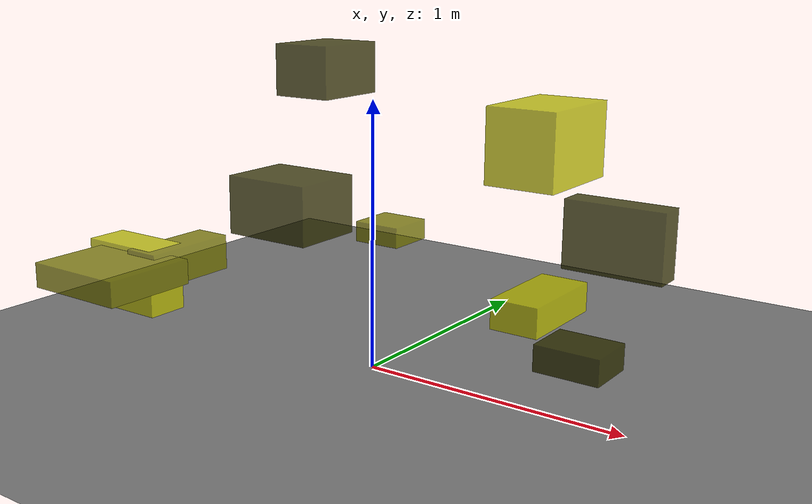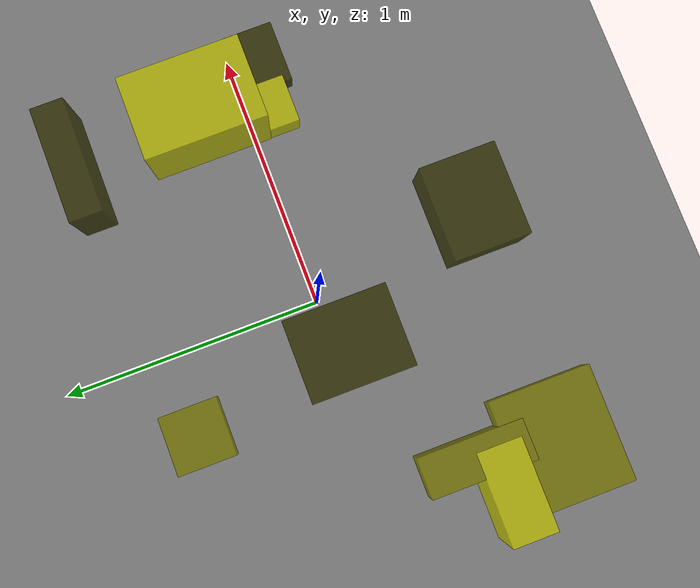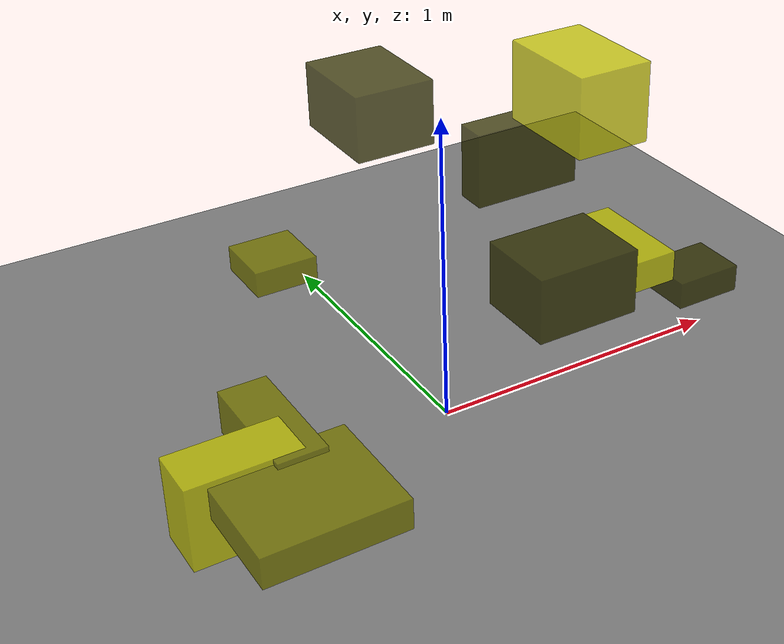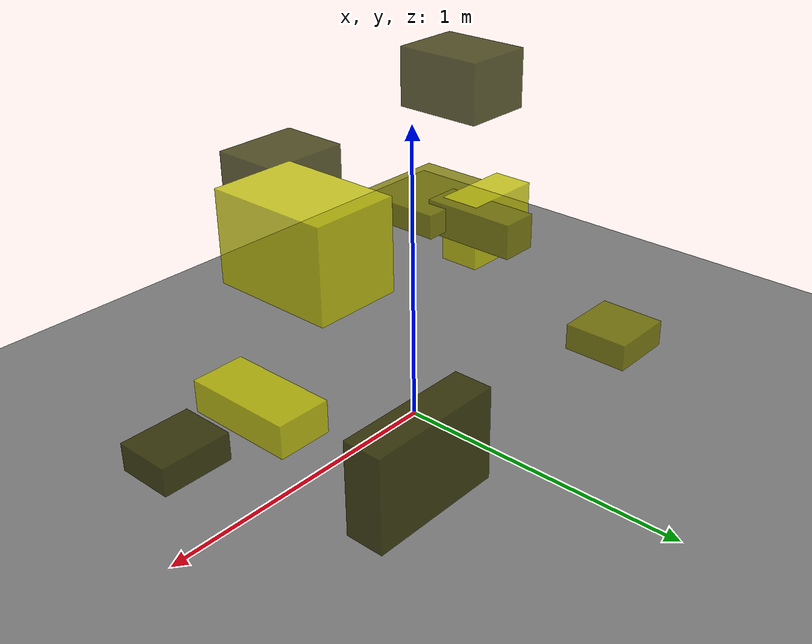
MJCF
<?xml version="1.0"?>
<mujoco model="obstacle_scene">
  <compiler angle="radian" coordinate="local"/>
  <option timestep="0.001" gravity="0 0 -9.81"/>

  <asset>
    <material name="obstacle_mat" rgba="0.8 0.8 0.0 0.8"/>
    <material name="ground_mat" rgba="0.5 0.5 0.5 1"/>
  </asset>

  <worldbody>
    <!-- Ground plane -->
    <geom name="ground" type="plane" size="3 3 0.1" material="ground_mat"/>

    <!-- Obstacles -->
    <body name="obstacle_0" pos="0.871962 -0.096560 0.269576">
      <geom name="obs_0" type="box" size="0.112394 0.091121 0.044754" rgba="0.2 0.2 0.0 0.8"/>
    </body>
    <body name="obstacle_1" pos="-0.746530 -0.581437 0.369430">
      <geom name="obs_1" type="box" size="0.202958 0.180710 0.046628" rgba="0.5 0.5 0.0 0.8"/>
    </body>
    <body name="obstacle_2" pos="0.592915 0.166045 0.887399">
      <geom name="obs_2" type="box" size="0.126506 0.184067 0.131700" rgba="0.8 0.8 0.0 0.8"/>
    </body>
    <body name="obstacle_3" pos="0.057881 -0.518578 0.728081">
      <geom name="obs_3" type="box" size="0.149984 0.121528 0.093682" rgba="0.2 0.2 0.0 0.8"/>
    </body>
    <body name="obstacle_4" pos="-0.700827 -0.296608 0.365589">
      <geom name="obs_4" type="box" size="0.071257 0.187499 0.066903" rgba="0.5 0.5 0.0 0.8"/>
    </body>
    <body name="obstacle_5" pos="0.665887 0.025843 0.368302">
      <geom name="obs_5" type="box" size="0.085188 0.176709 0.051442" rgba="0.8 0.8 0.0 0.8"/>
    </body>
    <body name="obstacle_6" pos="-0.215559 0.006065 1.094906">
      <geom name="obs_6" type="box" size="0.113668 0.142848 0.092288" rgba="0.2 0.2 0.0 0.8"/>
    </body>
    <body name="obstacle_7" pos="-0.307590 0.545793 0.368724">
      <geom name="obs_7" type="box" size="0.102881 0.103059 0.041943" rgba="0.5 0.5 0.0 0.8"/>
    </body>
    <body name="obstacle_8" pos="-0.845650 -0.378314 0.305246">
      <geom name="obs_8" type="box" size="0.164174 0.080553 0.127759" rgba="0.8 0.8 0.0 0.8"/>
    </body>
    <body name="obstacle_9" pos="0.673817 0.620576 0.470493">
      <geom name="obs_9" type="box" size="0.199554 0.056672 0.135996" rgba="0.2 0.2 0.0 0.8"/>
    </body>
  </worldbody>
</mujoco>
